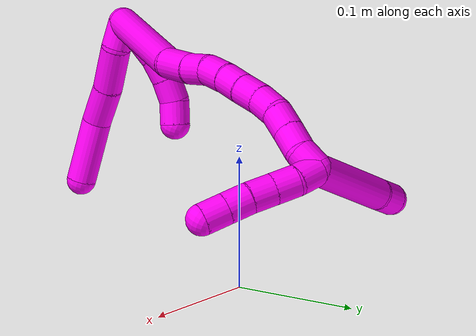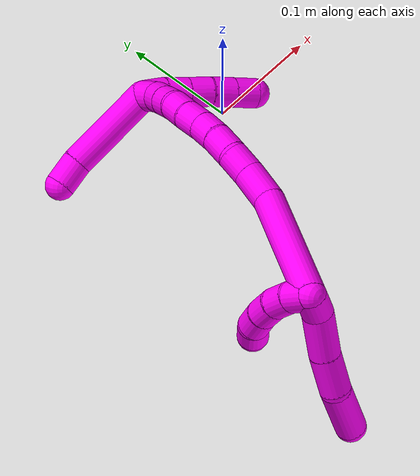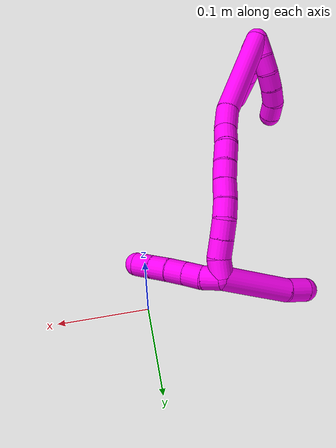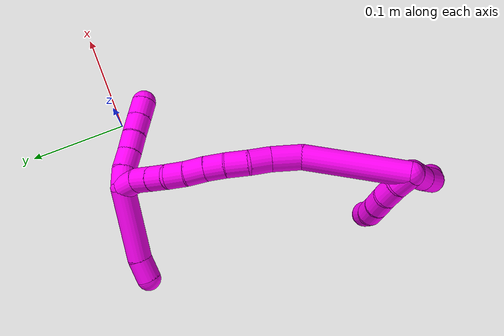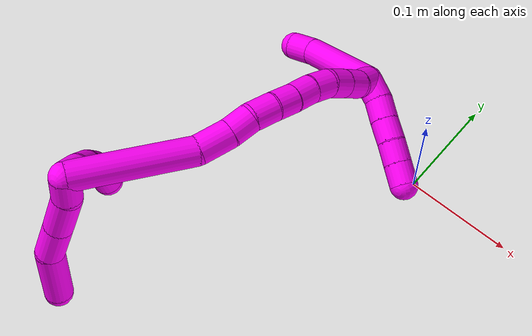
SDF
<sdf version="1.7">
 <world name="default">
  <model name="10">
   <static>0</static>
   <link name="10">
    <collision name="collision-cylinder-e_1_2_8">
     <pose>0.003644 -0.010474 -0.00176 1.73726 0.330544 0.389318</pose>
     <geometry><cylinder><radius>0.0125</radius><length>0.022456</length></cylinder></geometry>
     <surface>
      <friction><ode><mu>1.16</mu><mu2>1.16</mu2><slip1>0</slip1><slip2>0</slip2></ode></friction>
      <contact><ode><kp>1e+06</kp><kd>1</kd><max_vel>0</max_vel><min_depth>0.001</min_depth></ode></contact>
     </surface>
    </collision>
    <visual name="visual-cylinder-e_1_2_8">
     <pose>0.003644 -0.010474 -0.00176 1.73726 0.330544 0.389318</pose>
     <geometry><cylinder><radius>0.0125</radius><length>0.022456</length></cylinder></geometry>
     <material><ambient>1 0 0.964706 1</ambient></material>
    </visual>
    <collision name="collision-cylinder-e_2_8_9">
     <pose>0.008004 -0.040681 -0.004781 1.63464 0.03618 0.038567</pose>
     <geometry><cylinder><radius>0.0125</radius><length>0.039574</length></cylinder></geometry>
     <surface>
      <friction><ode><mu>1.16</mu><mu2>1.16</mu2><slip1>0</slip1><slip2>0</slip2></ode></friction>
      <contact><ode><kp>1e+06</kp><kd>1</kd><max_vel>0</max_vel><min_depth>0.001</min_depth></ode></contact>
     </surface>
    </collision>
    <visual name="visual-cylinder-e_2_8_9">
     <pose>0.008004 -0.040681 -0.004781 1.63464 0.03618 0.038567</pose>
     <geometry><cylinder><radius>0.0125</radius><length>0.039574</length></cylinder></geometry>
     <material><ambient>1 0 0.964706 1</ambient></material>
    </visual>
    <collision name="collision-cylinder-e_3_9_10">
     <pose>0.010116 -0.077618 -0.005565 1.54302 0.080924 0.078709</pose>
     <geometry><cylinder><radius>0.0125</radius><length>0.034533</length></cylinder></geometry>
     <surface>
      <friction><ode><mu>1.16</mu><mu2>1.16</mu2><slip1>0</slip1><slip2>0</slip2></ode></friction>
      <contact><ode><kp>1e+06</kp><kd>1</kd><max_vel>0</max_vel><min_depth>0.001</min_depth></ode></contact>
     </surface>
    </collision>
    <visual name="visual-cylinder-e_3_9_10">
     <pose>0.010116 -0.077618 -0.005565 1.54302 0.080924 0.078709</pose>
     <geometry><cylinder><radius>0.0125</radius><length>0.034533</length></cylinder></geometry>
     <material><ambient>1 0 0.964706 1</ambient></material>
    </visual>
    <collision name="collision-cylinder-e_4_10_6">
     <pose>0.02046 -0.119468 -0.010219 1.7761 0.341507 0.417887</pose>
     <geometry><cylinder><radius>0.0125</radius><length>0.053437</length></cylinder></geometry>
     <surface>
      <friction><ode><mu>1.16</mu><mu2>1.16</mu2><slip1>0</slip1><slip2>0</slip2></ode></friction>
      <contact><ode><kp>1e+06</kp><kd>1</kd><max_vel>0</max_vel><min_depth>0.001</min_depth></ode></contact>
     </surface>
    </collision>
    <visual name="visual-cylinder-e_4_10_6">
     <pose>0.02046 -0.119468 -0.010219 1.7761 0.341507 0.417887</pose>
     <geometry><cylinder><radius>0.0125</radius><length>0.053437</length></cylinder></geometry>
     <material><ambient>1 0 0.964706 1</ambient></material>
    </visual>
    <collision name="collision-cylinder-e_1_2_11">
     <pose>-0.001042 -0.0031 -0.00945 2.82457 -0.104396 -0.631781</pose>
     <geometry><cylinder><radius>0.0125</radius><length>0.02</length></cylinder></geometry>
     <surface>
      <friction><ode><mu>1.16</mu><mu2>1.16</mu2><slip1>0</slip1><slip2>0</slip2></ode></friction>
      <contact><ode><kp>1e+06</kp><kd>1</kd><max_vel>0</max_vel><min_depth>0.001</min_depth></ode></contact>
     </surface>
    </collision>
    <visual name="visual-cylinder-e_1_2_11">
     <pose>-0.001042 -0.0031 -0.00945 2.82457 -0.104396 -0.631781</pose>
     <geometry><cylinder><radius>0.0125</radius><length>0.02</length></cylinder></geometry>
     <material><ambient>1 0 0.964706 1</ambient></material>
    </visual>
    <collision name="collision-cylinder-e_2_11_12">
     <pose>-0.003087 -0.011202 -0.027501 2.61492 -0.100499 -0.368848</pose>
     <geometry><cylinder><radius>0.0125</radius><length>0.02</length></cylinder></geometry>
     <surface>
      <friction><ode><mu>1.16</mu><mu2>1.16</mu2><slip1>0</slip1><slip2>0</slip2></ode></friction>
      <contact><ode><kp>1e+06</kp><kd>1</kd><max_vel>0</max_vel><min_depth>0.001</min_depth></ode></contact>
     </surface>
    </collision>
    <visual name="visual-cylinder-e_2_11_12">
     <pose>-0.003087 -0.011202 -0.027501 2.61492 -0.100499 -0.368848</pose>
     <geometry><cylinder><radius>0.0125</radius><length>0.02</length></cylinder></geometry>
     <material><ambient>1 0 0.964706 1</ambient></material>
    </visual>
    <collision name="collision-cylinder-e_3_12_13">
     <pose>-0.004657 -0.022838 -0.043563 2.41478 -0.056697 -0.148851</pose>
     <geometry><cylinder><radius>0.0125</radius><length>0.02</length></cylinder></geometry>
     <surface>
      <friction><ode><mu>1.16</mu><mu2>1.16</mu2><slip1>0</slip1><slip2>0</slip2></ode></friction>
      <contact><ode><kp>1e+06</kp><kd>1</kd><max_vel>0</max_vel><min_depth>0.001</min_depth></ode></contact>
     </surface>
    </collision>
    <visual name="visual-cylinder-e_3_12_13">
     <pose>-0.004657 -0.022838 -0.043563 2.41478 -0.056697 -0.148851</pose>
     <geometry><cylinder><radius>0.0125</radius><length>0.02</length></cylinder></geometry>
     <material><ambient>1 0 0.964706 1</ambient></material>
    </visual>
    <collision name="collision-cylinder-e_4_13_14">
     <pose>-0.004981 -0.03691 -0.057704 2.3025 0.024325 0.054526</pose>
     <geometry><cylinder><radius>0.0125</radius><length>0.02</length></cylinder></geometry>
     <surface>
      <friction><ode><mu>1.16</mu><mu2>1.16</mu2><slip1>0</slip1><slip2>0</slip2></ode></friction>
      <contact><ode><kp>1e+06</kp><kd>1</kd><max_vel>0</max_vel><min_depth>0.001</min_depth></ode></contact>
     </surface>
    </collision>
    <visual name="visual-cylinder-e_4_13_14">
     <pose>-0.004981 -0.03691 -0.057704 2.3025 0.024325 0.054526</pose>
     <geometry><cylinder><radius>0.0125</radius><length>0.02</length></cylinder></geometry>
     <material><ambient>1 0 0.964706 1</ambient></material>
    </visual>
    <collision name="collision-cylinder-e_5_14_5">
     <pose>-0.001736 -0.052437 -0.069439 2.12939 0.30487 0.540784</pose>
     <geometry><cylinder><radius>0.0125</radius><length>0.02</length></cylinder></geometry>
     <surface>
      <friction><ode><mu>1.16</mu><mu2>1.16</mu2><slip1>0</slip1><slip2>0</slip2></ode></friction>
      <contact><ode><kp>1e+06</kp><kd>1</kd><max_vel>0</max_vel><min_depth>0.001</min_depth></ode></contact>
     </surface>
    </collision>
    <visual name="visual-cylinder-e_5_14_5">
     <pose>-0.001736 -0.052437 -0.069439 2.12939 0.30487 0.540784</pose>
     <geometry><cylinder><radius>0.0125</radius><length>0.02</length></cylinder></geometry>
     <material><ambient>1 0 0.964706 1</ambient></material>
    </visual>
    <collision name="collision-cylinder-e_1_2_15">
     <pose>0.027368 0.014917 -0.042318 -2.8027 0.547699 -2.0475</pose>
     <geometry><cylinder><radius>0.0125</radius><length>0.105115</length></cylinder></geometry>
     <surface>
      <friction><ode><mu>1.16</mu><mu2>1.16</mu2><slip1>0</slip1><slip2>0</slip2></ode></friction>
      <contact><ode><kp>1e+06</kp><kd>1</kd><max_vel>0</max_vel><min_depth>0.001</min_depth></ode></contact>
     </surface>
    </collision>
    <visual name="visual-cylinder-e_1_2_15">
     <pose>0.027368 0.014917 -0.042318 -2.8027 0.547699 -2.0475</pose>
     <geometry><cylinder><radius>0.0125</radius><length>0.105115</length></cylinder></geometry>
     <material><ambient>1 0 0.964706 1</ambient></material>
    </visual>
    <collision name="collision-cylinder-e_2_15_16">
     <pose>0.058813 0.036255 -0.097608 -2.68191 0.274571 -1.06676</pose>
     <geometry><cylinder><radius>0.0125</radius><length>0.030078</length></cylinder></geometry>
     <surface>
      <friction><ode><mu>1.16</mu><mu2>1.16</mu2><slip1>0</slip1><slip2>0</slip2></ode></friction>
      <contact><ode><kp>1e+06</kp><kd>1</kd><max_vel>0</max_vel><min_depth>0.001</min_depth></ode></contact>
     </surface>
    </collision>
    <visual name="visual-cylinder-e_2_15_16">
     <pose>0.058813 0.036255 -0.097608 -2.68191 0.274571 -1.06676</pose>
     <geometry><cylinder><radius>0.0125</radius><length>0.030078</length></cylinder></geometry>
     <material><ambient>1 0 0.964706 1</ambient></material>
    </visual>
    <collision name="collision-cylinder-e_3_16_17">
     <pose>0.064491 0.048097 -0.119624 -2.60173 0.150641 -0.532525</pose>
     <geometry><cylinder><radius>0.0125</radius><length>0.021326</length></cylinder></geometry>
     <surface>
      <friction><ode><mu>1.16</mu><mu2>1.16</mu2><slip1>0</slip1><slip2>0</slip2></ode></friction>
      <contact><ode><kp>1e+06</kp><kd>1</kd><max_vel>0</max_vel><min_depth>0.001</min_depth></ode></contact>
     </surface>
    </collision>
    <visual name="visual-cylinder-e_3_16_17">
     <pose>0.064491 0.048097 -0.119624 -2.60173 0.150641 -0.532525</pose>
     <geometry><cylinder><radius>0.0125</radius><length>0.021326</length></cylinder></geometry>
     <material><ambient>1 0 0.964706 1</ambient></material>
    </visual>
    <collision name="collision-cylinder-e_4_17_18">
     <pose>0.069154 0.056823 -0.139032 -2.83277 0.274428 -1.4513</pose>
     <geometry><cylinder><radius>0.0125</radius><length>0.022605</length></cylinder></geometry>
     <surface>
      <friction><ode><mu>1.16</mu><mu2>1.16</mu2><slip1>0</slip1><slip2>0</slip2></ode></friction>
      <contact><ode><kp>1e+06</kp><kd>1</kd><max_vel>0</max_vel><min_depth>0.001</min_depth></ode></contact>
     </surface>
    </collision>
    <visual name="visual-cylinder-e_4_17_18">
     <pose>0.069154 0.056823 -0.139032 -2.83277 0.274428 -1.4513</pose>
     <geometry><cylinder><radius>0.0125</radius><length>0.022605</length></cylinder></geometry>
     <material><ambient>1 0 0.964706 1</ambient></material>
    </visual>
    <collision name="collision-cylinder-e_5_18_19">
     <pose>0.074753 0.061823 -0.158945 -2.966 0.255774 -1.94104</pose>
     <geometry><cylinder><radius>0.0125</radius><length>0.020047</length></cylinder></geometry>
     <surface>
      <friction><ode><mu>1.16</mu><mu2>1.16</mu2><slip1>0</slip1><slip2>0</slip2></ode></friction>
      <contact><ode><kp>1e+06</kp><kd>1</kd><max_vel>0</max_vel><min_depth>0.001</min_depth></ode></contact>
     </surface>
    </collision>
    <visual name="visual-cylinder-e_5_18_19">
     <pose>0.074753 0.061823 -0.158945 -2.966 0.255774 -1.94104</pose>
     <geometry><cylinder><radius>0.0125</radius><length>0.020047</length></cylinder></geometry>
     <material><ambient>1 0 0.964706 1</ambient></material>
    </visual>
    <collision name="collision-cylinder-e_6_19_20">
     <pose>0.079169 0.065083 -0.178508 -2.98651 0.183333 -1.73815</pose>
     <geometry><cylinder><radius>0.0125</radius><length>0.020618</length></cylinder></geometry>
     <surface>
      <friction><ode><mu>1.16</mu><mu2>1.16</mu2><slip1>0</slip1><slip2>0</slip2></ode></friction>
      <contact><ode><kp>1e+06</kp><kd>1</kd><max_vel>0</max_vel><min_depth>0.001</min_depth></ode></contact>
     </surface>
    </collision>
    <visual name="visual-cylinder-e_6_19_20">
     <pose>0.079169 0.065083 -0.178508 -2.98651 0.183333 -1.73815</pose>
     <geometry><cylinder><radius>0.0125</radius><length>0.020618</length></cylinder></geometry>
     <material><ambient>1 0 0.964706 1</ambient></material>
    </visual>
    <collision name="collision-cylinder-e_7_20_21">
     <pose>0.083926 0.06743 -0.198126 -3.06047 0.29025 -2.59991</pose>
     <geometry><cylinder><radius>0.0125</radius><length>0.02011</length></cylinder></geometry>
     <surface>
      <friction><ode><mu>1.16</mu><mu2>1.16</mu2><slip1>0</slip1><slip2>0</slip2></ode></friction>
      <contact><ode><kp>1e+06</kp><kd>1</kd><max_vel>0</max_vel><min_depth>0.001</min_depth></ode></contact>
     </surface>
    </collision>
    <visual name="visual-cylinder-e_7_20_21">
     <pose>0.083926 0.06743 -0.198126 -3.06047 0.29025 -2.59991</pose>
     <geometry><cylinder><radius>0.0125</radius><length>0.02011</length></cylinder></geometry>
     <material><ambient>1 0 0.964706 1</ambient></material>
    </visual>
    <collision name="collision-cylinder-e_8_21_22">
     <pose>0.090437 0.066191 -0.216848 2.92368 0.371007 2.08607</pose>
     <geometry><cylinder><radius>0.0125</radius><length>0.020045</length></cylinder></geometry>
     <surface>
      <friction><ode><mu>1.16</mu><mu2>1.16</mu2><slip1>0</slip1><slip2>0</slip2></ode></friction>
      <contact><ode><kp>1e+06</kp><kd>1</kd><max_vel>0</max_vel><min_depth>0.001</min_depth></ode></contact>
     </surface>
    </collision>
    <visual name="visual-cylinder-e_8_21_22">
     <pose>0.090437 0.066191 -0.216848 2.92368 0.371007 2.08607</pose>
     <geometry><cylinder><radius>0.0125</radius><length>0.020045</length></cylinder></geometry>
     <material><ambient>1 0 0.964706 1</ambient></material>
    </visual>
    <collision name="collision-cylinder-e_9_22_23">
     <pose>0.097855 0.061999 -0.234995 2.90541 0.38702 2.05276</pose>
     <geometry><cylinder><radius>0.0125</radius><length>0.020052</length></cylinder></geometry>
     <surface>
      <friction><ode><mu>1.16</mu><mu2>1.16</mu2><slip1>0</slip1><slip2>0</slip2></ode></friction>
      <contact><ode><kp>1e+06</kp><kd>1</kd><max_vel>0</max_vel><min_depth>0.001</min_depth></ode></contact>
     </surface>
    </collision>
    <visual name="visual-cylinder-e_9_22_23">
     <pose>0.097855 0.061999 -0.234995 2.90541 0.38702 2.05276</pose>
     <geometry><cylinder><radius>0.0125</radius><length>0.020052</length></cylinder></geometry>
     <material><ambient>1 0 0.964706 1</ambient></material>
    </visual>
    <collision name="collision-cylinder-e_10_23_1">
     <pose>0.102548 0.05771 -0.253754 2.92752 0.090997 0.801617</pose>
     <geometry><cylinder><radius>0.0125</radius><length>0.020003</length></cylinder></geometry>
     <surface>
      <friction><ode><mu>1.16</mu><mu2>1.16</mu2><slip1>0</slip1><slip2>0</slip2></ode></friction>
      <contact><ode><kp>1e+06</kp><kd>1</kd><max_vel>0</max_vel><min_depth>0.001</min_depth></ode></contact>
     </surface>
    </collision>
    <visual name="visual-cylinder-e_10_23_1">
     <pose>0.102548 0.05771 -0.253754 2.92752 0.090997 0.801617</pose>
     <geometry><cylinder><radius>0.0125</radius><length>0.020003</length></cylinder></geometry>
     <material><ambient>1 0 0.964706 1</ambient></material>
    </visual>
    <collision name="collision-cylinder-e_1_1_24">
     <pose>0.072071 0.03772 -0.276139 2.18674 -0.961594 -1.57904</pose>
     <geometry><cylinder><radius>0.0125</radius><length>0.076541</length></cylinder></geometry>
     <surface>
      <friction><ode><mu>1.16</mu><mu2>1.16</mu2><slip1>0</slip1><slip2>0</slip2></ode></friction>
      <contact><ode><kp>1e+06</kp><kd>1</kd><max_vel>0</max_vel><min_depth>0.001</min_depth></ode></contact>
     </surface>
    </collision>
    <visual name="visual-cylinder-e_1_1_24">
     <pose>0.072071 0.03772 -0.276139 2.18674 -0.961594 -1.57904</pose>
     <geometry><cylinder><radius>0.0125</radius><length>0.076541</length></cylinder></geometry>
     <material><ambient>1 0 0.964706 1</ambient></material>
    </visual>
    <collision name="collision-cylinder-e_2_24_4">
     <pose>0.030752 0.013837 -0.290468 1.84299 -1.00999 -1.25885</pose>
     <geometry><cylinder><radius>0.0125</radius><length>0.023459</length></cylinder></geometry>
     <surface>
      <friction><ode><mu>1.16</mu><mu2>1.16</mu2><slip1>0</slip1><slip2>0</slip2></ode></friction>
      <contact><ode><kp>1e+06</kp><kd>1</kd><max_vel>0</max_vel><min_depth>0.001</min_depth></ode></contact>
     </surface>
    </collision>
    <visual name="visual-cylinder-e_2_24_4">
     <pose>0.030752 0.013837 -0.290468 1.84299 -1.00999 -1.25885</pose>
     <geometry><cylinder><radius>0.0125</radius><length>0.023459</length></cylinder></geometry>
     <material><ambient>1 0 0.964706 1</ambient></material>
    </visual>
    <collision name="collision-cylinder-e_1_1_25">
     <pose>0.112749 0.052938 -0.260918 0.801955 1.1923 0.560169</pose>
     <geometry><cylinder><radius>0.0125</radius><length>0.02</length></cylinder></geometry>
     <surface>
      <friction><ode><mu>1.16</mu><mu2>1.16</mu2><slip1>0</slip1><slip2>0</slip2></ode></friction>
      <contact><ode><kp>1e+06</kp><kd>1</kd><max_vel>0</max_vel><min_depth>0.001</min_depth></ode></contact>
     </surface>
    </collision>
    <visual name="visual-cylinder-e_1_1_25">
     <pose>0.112749 0.052938 -0.260918 0.801955 1.1923 0.560169</pose>
     <geometry><cylinder><radius>0.0125</radius><length>0.02</length></cylinder></geometry>
     <material><ambient>1 0 0.964706 1</ambient></material>
    </visual>
    <collision name="collision-cylinder-e_2_25_26">
     <pose>0.130372 0.046942 -0.253939 0.648265 0.984601 0.356579</pose>
     <geometry><cylinder><radius>0.0125</radius><length>0.02</length></cylinder></geometry>
     <surface>
      <friction><ode><mu>1.16</mu><mu2>1.16</mu2><slip1>0</slip1><slip2>0</slip2></ode></friction>
      <contact><ode><kp>1e+06</kp><kd>1</kd><max_vel>0</max_vel><min_depth>0.001</min_depth></ode></contact>
     </surface>
    </collision>
    <visual name="visual-cylinder-e_2_25_26">
     <pose>0.130372 0.046942 -0.253939 0.648265 0.984601 0.356579</pose>
     <geometry><cylinder><radius>0.0125</radius><length>0.02</length></cylinder></geometry>
     <material><ambient>1 0 0.964706 1</ambient></material>
    </visual>
    <collision name="collision-cylinder-e_3_26_27">
     <pose>0.147232 0.04055 -0.245295 0.624562 1.02168 0.358009</pose>
     <geometry><cylinder><radius>0.0125</radius><length>0.02</length></cylinder></geometry>
     <surface>
      <friction><ode><mu>1.16</mu><mu2>1.16</mu2><slip1>0</slip1><slip2>0</slip2></ode></friction>
      <contact><ode><kp>1e+06</kp><kd>1</kd><max_vel>0</max_vel><min_depth>0.001</min_depth></ode></contact>
     </surface>
    </collision>
    <visual name="visual-cylinder-e_3_26_27">
     <pose>0.147232 0.04055 -0.245295 0.624562 1.02168 0.358009</pose>
     <geometry><cylinder><radius>0.0125</radius><length>0.02</length></cylinder></geometry>
     <material><ambient>1 0 0.964706 1</ambient></material>
    </visual>
    <collision name="collision-cylinder-e_4_27_28">
     <pose>0.16414 0.033696 -0.237143 0.770332 0.993245 0.432537</pose>
     <geometry><cylinder><radius>0.0125</radius><length>0.02</length></cylinder></geometry>
     <surface>
      <friction><ode><mu>1.16</mu><mu2>1.16</mu2><slip1>0</slip1><slip2>0</slip2></ode></friction>
      <contact><ode><kp>1e+06</kp><kd>1</kd><max_vel>0</max_vel><min_depth>0.001</min_depth></ode></contact>
     </surface>
    </collision>
    <visual name="visual-cylinder-e_4_27_28">
     <pose>0.16414 0.033696 -0.237143 0.770332 0.993245 0.432537</pose>
     <geometry><cylinder><radius>0.0125</radius><length>0.02</length></cylinder></geometry>
     <material><ambient>1 0 0.964706 1</ambient></material>
    </visual>
    <collision name="collision-cylinder-e_5_28_3">
     <pose>0.180897 0.026101 -0.2293 0.768373 0.993453 0.431462</pose>
     <geometry><cylinder><radius>0.0125</radius><length>0.02</length></cylinder></geometry>
     <surface>
      <friction><ode><mu>1.16</mu><mu2>1.16</mu2><slip1>0</slip1><slip2>0</slip2></ode></friction>
      <contact><ode><kp>1e+06</kp><kd>1</kd><max_vel>0</max_vel><min_depth>0.001</min_depth></ode></contact>
     </surface>
    </collision>
    <visual name="visual-cylinder-e_5_28_3">
     <pose>0.180897 0.026101 -0.2293 0.768373 0.993453 0.431462</pose>
     <geometry><cylinder><radius>0.0125</radius><length>0.02</length></cylinder></geometry>
     <material><ambient>1 0 0.964706 1</ambient></material>
    </visual>
    <collision name="collision-sphere-3">
     <pose>0.189276 0.022308 -0.225375 0 -0 0</pose>
     <geometry><sphere><radius>0.0125</radius></sphere></geometry>
     <surface>
      <friction><ode><mu>1.16</mu><mu2>1.16</mu2><slip1>0</slip1><slip2>0</slip2></ode></friction>
      <contact><ode><kp>1e+06</kp><kd>1</kd><max_vel>0</max_vel><min_depth>0.001</min_depth></ode></contact>
     </surface>
    </collision>
    <visual name="visual-sphere-3">
     <pose>0.189276 0.022308 -0.225375 0 -0 0</pose>
     <geometry><sphere><radius>0.0125</radius></sphere></geometry>
     <material><ambient>1 0 0.964706 1</ambient></material>
    </visual>
    <collision name="collision-sphere-28">
     <pose>0.172518 0.029894 -0.233224 0 -0 0</pose>
     <geometry><sphere><radius>0.0125</radius></sphere></geometry>
     <surface>
      <friction><ode><mu>1.16</mu><mu2>1.16</mu2><slip1>0</slip1><slip2>0</slip2></ode></friction>
      <contact><ode><kp>1e+06</kp><kd>1</kd><max_vel>0</max_vel><min_depth>0.001</min_depth></ode></contact>
     </surface>
    </collision>
    <visual name="visual-sphere-28">
     <pose>0.172518 0.029894 -0.233224 0 -0 0</pose>
     <geometry><sphere><radius>0.0125</radius></sphere></geometry>
     <material><ambient>1 0 0.964706 1</ambient></material>
    </visual>
    <collision name="collision-sphere-27">
     <pose>0.155762 0.037498 -0.241061 0 -0 0</pose>
     <geometry><sphere><radius>0.0125</radius></sphere></geometry>
     <surface>
      <friction><ode><mu>1.16</mu><mu2>1.16</mu2><slip1>0</slip1><slip2>0</slip2></ode></friction>
      <contact><ode><kp>1e+06</kp><kd>1</kd><max_vel>0</max_vel><min_depth>0.001</min_depth></ode></contact>
     </surface>
    </collision>
    <visual name="visual-sphere-27">
     <pose>0.155762 0.037498 -0.241061 0 -0 0</pose>
     <geometry><sphere><radius>0.0125</radius></sphere></geometry>
     <material><ambient>1 0 0.964706 1</ambient></material>
    </visual>
    <collision name="collision-sphere-26">
     <pose>0.138702 0.043602 -0.249529 0 -0 0</pose>
     <geometry><sphere><radius>0.0125</radius></sphere></geometry>
     <surface>
      <friction><ode><mu>1.16</mu><mu2>1.16</mu2><slip1>0</slip1><slip2>0</slip2></ode></friction>
      <contact><ode><kp>1e+06</kp><kd>1</kd><max_vel>0</max_vel><min_depth>0.001</min_depth></ode></contact>
     </surface>
    </collision>
    <visual name="visual-sphere-26">
     <pose>0.138702 0.043602 -0.249529 0 -0 0</pose>
     <geometry><sphere><radius>0.0125</radius></sphere></geometry>
     <material><ambient>1 0 0.964706 1</ambient></material>
    </visual>
    <collision name="collision-sphere-25">
     <pose>0.122041 0.050283 -0.258349 0 -0 0</pose>
     <geometry><sphere><radius>0.0125</radius></sphere></geometry>
     <surface>
      <friction><ode><mu>1.16</mu><mu2>1.16</mu2><slip1>0</slip1><slip2>0</slip2></ode></friction>
      <contact><ode><kp>1e+06</kp><kd>1</kd><max_vel>0</max_vel><min_depth>0.001</min_depth></ode></contact>
     </surface>
    </collision>
    <visual name="visual-sphere-25">
     <pose>0.122041 0.050283 -0.258349 0 -0 0</pose>
     <geometry><sphere><radius>0.0125</radius></sphere></geometry>
     <material><ambient>1 0 0.964706 1</ambient></material>
    </visual>
    <collision name="collision-sphere-4">
     <pose>0.020819 0.007828 -0.292145 0 -0 0</pose>
     <geometry><sphere><radius>0.0125</radius></sphere></geometry>
     <surface>
      <friction><ode><mu>1.16</mu><mu2>1.16</mu2><slip1>0</slip1><slip2>0</slip2></ode></friction>
      <contact><ode><kp>1e+06</kp><kd>1</kd><max_vel>0</max_vel><min_depth>0.001</min_depth></ode></contact>
     </surface>
    </collision>
    <visual name="visual-sphere-4">
     <pose>0.020819 0.007828 -0.292145 0 -0 0</pose>
     <geometry><sphere><radius>0.0125</radius></sphere></geometry>
     <material><ambient>1 0 0.964706 1</ambient></material>
    </visual>
    <collision name="collision-sphere-24">
     <pose>0.040685 0.019845 -0.28879 0 -0 0</pose>
     <geometry><sphere><radius>0.0125</radius></sphere></geometry>
     <surface>
      <friction><ode><mu>1.16</mu><mu2>1.16</mu2><slip1>0</slip1><slip2>0</slip2></ode></friction>
      <contact><ode><kp>1e+06</kp><kd>1</kd><max_vel>0</max_vel><min_depth>0.001</min_depth></ode></contact>
     </surface>
    </collision>
    <visual name="visual-sphere-24">
     <pose>0.040685 0.019845 -0.28879 0 -0 0</pose>
     <geometry><sphere><radius>0.0125</radius></sphere></geometry>
     <material><ambient>1 0 0.964706 1</ambient></material>
    </visual>
    <collision name="collision-sphere-1">
     <pose>0.103457 0.055594 -0.263487 0 -0 0</pose>
     <geometry><sphere><radius>0.0125</radius></sphere></geometry>
     <surface>
      <friction><ode><mu>1.16</mu><mu2>1.16</mu2><slip1>0</slip1><slip2>0</slip2></ode></friction>
      <contact><ode><kp>1e+06</kp><kd>1</kd><max_vel>0</max_vel><min_depth>0.001</min_depth></ode></contact>
     </surface>
    </collision>
    <visual name="visual-sphere-1">
     <pose>0.103457 0.055594 -0.263487 0 -0 0</pose>
     <geometry><sphere><radius>0.0125</radius></sphere></geometry>
     <material><ambient>1 0 0.964706 1</ambient></material>
    </visual>
    <collision name="collision-sphere-23">
     <pose>0.101639 0.059826 -0.244022 0 -0 0</pose>
     <geometry><sphere><radius>0.0125</radius></sphere></geometry>
     <surface>
      <friction><ode><mu>1.16</mu><mu2>1.16</mu2><slip1>0</slip1><slip2>0</slip2></ode></friction>
      <contact><ode><kp>1e+06</kp><kd>1</kd><max_vel>0</max_vel><min_depth>0.001</min_depth></ode></contact>
     </surface>
    </collision>
    <visual name="visual-sphere-23">
     <pose>0.101639 0.059826 -0.244022 0 -0 0</pose>
     <geometry><sphere><radius>0.0125</radius></sphere></geometry>
     <material><ambient>1 0 0.964706 1</ambient></material>
    </visual>
    <collision name="collision-sphere-22">
     <pose>0.094071 0.064171 -0.225968 0 -0 0</pose>
     <geometry><sphere><radius>0.0125</radius></sphere></geometry>
     <surface>
      <friction><ode><mu>1.16</mu><mu2>1.16</mu2><slip1>0</slip1><slip2>0</slip2></ode></friction>
      <contact><ode><kp>1e+06</kp><kd>1</kd><max_vel>0</max_vel><min_depth>0.001</min_depth></ode></contact>
     </surface>
    </collision>
    <visual name="visual-sphere-22">
     <pose>0.094071 0.064171 -0.225968 0 -0 0</pose>
     <geometry><sphere><radius>0.0125</radius></sphere></geometry>
     <material><ambient>1 0 0.964706 1</ambient></material>
    </visual>
    <collision name="collision-sphere-21">
     <pose>0.086803 0.06821 -0.207728 0 -0 0</pose>
     <geometry><sphere><radius>0.0125</radius></sphere></geometry>
     <surface>
      <friction><ode><mu>1.16</mu><mu2>1.16</mu2><slip1>0</slip1><slip2>0</slip2></ode></friction>
      <contact><ode><kp>1e+06</kp><kd>1</kd><max_vel>0</max_vel><min_depth>0.001</min_depth></ode></contact>
     </surface>
    </collision>
    <visual name="visual-sphere-21">
     <pose>0.086803 0.06821 -0.207728 0 -0 0</pose>
     <geometry><sphere><radius>0.0125</radius></sphere></geometry>
     <material><ambient>1 0 0.964706 1</ambient></material>
    </visual>
    <collision name="collision-sphere-11">
     <pose>-0.002084 -0.006201 -0.0189 0 -0 0</pose>
     <geometry><sphere><radius>0.0125</radius></sphere></geometry>
     <surface>
      <friction><ode><mu>1.16</mu><mu2>1.16</mu2><slip1>0</slip1><slip2>0</slip2></ode></friction>
      <contact><ode><kp>1e+06</kp><kd>1</kd><max_vel>0</max_vel><min_depth>0.001</min_depth></ode></contact>
     </surface>
    </collision>
    <visual name="visual-sphere-11">
     <pose>-0.002084 -0.006201 -0.0189 0 -0 0</pose>
     <geometry><sphere><radius>0.0125</radius></sphere></geometry>
     <material><ambient>1 0 0.964706 1</ambient></material>
    </visual>
    <collision name="collision-sphere-6">
     <pose>0.029408 -0.144115 -0.015351 0 -0 0</pose>
     <geometry><sphere><radius>0.0125</radius></sphere></geometry>
     <surface>
      <friction><ode><mu>1.16</mu><mu2>1.16</mu2><slip1>0</slip1><slip2>0</slip2></ode></friction>
      <contact><ode><kp>1e+06</kp><kd>1</kd><max_vel>0</max_vel><min_depth>0.001</min_depth></ode></contact>
     </surface>
    </collision>
    <visual name="visual-sphere-6">
     <pose>0.029408 -0.144115 -0.015351 0 -0 0</pose>
     <geometry><sphere><radius>0.0125</radius></sphere></geometry>
     <material><ambient>1 0 0.964706 1</ambient></material>
    </visual>
    <collision name="collision-sphere-10">
     <pose>0.011511 -0.094821 -0.005087 0 -0 0</pose>
     <geometry><sphere><radius>0.0125</radius></sphere></geometry>
     <surface>
      <friction><ode><mu>1.16</mu><mu2>1.16</mu2><slip1>0</slip1><slip2>0</slip2></ode></friction>
      <contact><ode><kp>1e+06</kp><kd>1</kd><max_vel>0</max_vel><min_depth>0.001</min_depth></ode></contact>
     </surface>
    </collision>
    <visual name="visual-sphere-10">
     <pose>0.011511 -0.094821 -0.005087 0 -0 0</pose>
     <geometry><sphere><radius>0.0125</radius></sphere></geometry>
     <material><ambient>1 0 0.964706 1</ambient></material>
    </visual>
    <collision name="collision-sphere-9">
     <pose>0.00872 -0.060414 -0.006043 0 -0 0</pose>
     <geometry><sphere><radius>0.0125</radius></sphere></geometry>
     <surface>
      <friction><ode><mu>1.16</mu><mu2>1.16</mu2><slip1>0</slip1><slip2>0</slip2></ode></friction>
      <contact><ode><kp>1e+06</kp><kd>1</kd><max_vel>0</max_vel><min_depth>0.001</min_depth></ode></contact>
     </surface>
    </collision>
    <visual name="visual-sphere-9">
     <pose>0.00872 -0.060414 -0.006043 0 -0 0</pose>
     <geometry><sphere><radius>0.0125</radius></sphere></geometry>
     <material><ambient>1 0 0.964706 1</ambient></material>
    </visual>
    <collision name="collision-sphere-2">
     <geometry><sphere><radius>0.0125</radius></sphere></geometry>
     <surface>
      <friction><ode><mu>1.16</mu><mu2>1.16</mu2><slip1>0</slip1><slip2>0</slip2></ode></friction>
      <contact><ode><kp>1e+06</kp><kd>1</kd><max_vel>0</max_vel><min_depth>0.001</min_depth></ode></contact>
     </surface>
    </collision>
    <visual name="visual-sphere-2">
     <geometry><sphere><radius>0.0125</radius></sphere></geometry>
     <material><ambient>1 0 0.964706 1</ambient></material>
    </visual>
    <collision name="collision-sphere-19">
     <pose>0.077289 0.063518 -0.168494 0 -0 0</pose>
     <geometry><sphere><radius>0.0125</radius></sphere></geometry>
     <surface>
      <friction><ode><mu>1.16</mu><mu2>1.16</mu2><slip1>0</slip1><slip2>0</slip2></ode></friction>
      <contact><ode><kp>1e+06</kp><kd>1</kd><max_vel>0</max_vel><min_depth>0.001</min_depth></ode></contact>
     </surface>
    </collision>
    <visual name="visual-sphere-19">
     <pose>0.077289 0.063518 -0.168494 0 -0 0</pose>
     <geometry><sphere><radius>0.0125</radius></sphere></geometry>
     <material><ambient>1 0 0.964706 1</ambient></material>
    </visual>
    <collision name="collision-sphere-8">
     <pose>0.007288 -0.020947 -0.003519 0 -0 0</pose>
     <geometry><sphere><radius>0.0125</radius></sphere></geometry>
     <surface>
      <friction><ode><mu>1.16</mu><mu2>1.16</mu2><slip1>0</slip1><slip2>0</slip2></ode></friction>
      <contact><ode><kp>1e+06</kp><kd>1</kd><max_vel>0</max_vel><min_depth>0.001</min_depth></ode></contact>
     </surface>
    </collision>
    <visual name="visual-sphere-8">
     <pose>0.007288 -0.020947 -0.003519 0 -0 0</pose>
     <geometry><sphere><radius>0.0125</radius></sphere></geometry>
     <material><ambient>1 0 0.964706 1</ambient></material>
    </visual>
    <collision name="collision-sphere-12">
     <pose>-0.004091 -0.016203 -0.036102 0 -0 0</pose>
     <geometry><sphere><radius>0.0125</radius></sphere></geometry>
     <surface>
      <friction><ode><mu>1.16</mu><mu2>1.16</mu2><slip1>0</slip1><slip2>0</slip2></ode></friction>
      <contact><ode><kp>1e+06</kp><kd>1</kd><max_vel>0</max_vel><min_depth>0.001</min_depth></ode></contact>
     </surface>
    </collision>
    <visual name="visual-sphere-12">
     <pose>-0.004091 -0.016203 -0.036102 0 -0 0</pose>
     <geometry><sphere><radius>0.0125</radius></sphere></geometry>
     <material><ambient>1 0 0.964706 1</ambient></material>
    </visual>
    <collision name="collision-sphere-13">
     <pose>-0.005224 -0.029472 -0.051024 0 -0 0</pose>
     <geometry><sphere><radius>0.0125</radius></sphere></geometry>
     <surface>
      <friction><ode><mu>1.16</mu><mu2>1.16</mu2><slip1>0</slip1><slip2>0</slip2></ode></friction>
      <contact><ode><kp>1e+06</kp><kd>1</kd><max_vel>0</max_vel><min_depth>0.001</min_depth></ode></contact>
     </surface>
    </collision>
    <visual name="visual-sphere-13">
     <pose>-0.005224 -0.029472 -0.051024 0 -0 0</pose>
     <geometry><sphere><radius>0.0125</radius></sphere></geometry>
     <material><ambient>1 0 0.964706 1</ambient></material>
    </visual>
    <collision name="collision-sphere-14">
     <pose>-0.004738 -0.044348 -0.064383 0 -0 0</pose>
     <geometry><sphere><radius>0.0125</radius></sphere></geometry>
     <surface>
      <friction><ode><mu>1.16</mu><mu2>1.16</mu2><slip1>0</slip1><slip2>0</slip2></ode></friction>
      <contact><ode><kp>1e+06</kp><kd>1</kd><max_vel>0</max_vel><min_depth>0.001</min_depth></ode></contact>
     </surface>
    </collision>
    <visual name="visual-sphere-14">
     <pose>-0.004738 -0.044348 -0.064383 0 -0 0</pose>
     <geometry><sphere><radius>0.0125</radius></sphere></geometry>
     <material><ambient>1 0 0.964706 1</ambient></material>
    </visual>
    <collision name="collision-sphere-5">
     <pose>0.001266 -0.060526 -0.074494 0 -0 0</pose>
     <geometry><sphere><radius>0.0125</radius></sphere></geometry>
     <surface>
      <friction><ode><mu>1.16</mu><mu2>1.16</mu2><slip1>0</slip1><slip2>0</slip2></ode></friction>
      <contact><ode><kp>1e+06</kp><kd>1</kd><max_vel>0</max_vel><min_depth>0.001</min_depth></ode></contact>
     </surface>
    </collision>
    <visual name="visual-sphere-5">
     <pose>0.001266 -0.060526 -0.074494 0 -0 0</pose>
     <geometry><sphere><radius>0.0125</radius></sphere></geometry>
     <material><ambient>1 0 0.964706 1</ambient></material>
    </visual>
    <collision name="collision-sphere-15">
     <pose>0.054736 0.029833 -0.084635 0 -0 0</pose>
     <geometry><sphere><radius>0.0125</radius></sphere></geometry>
     <surface>
      <friction><ode><mu>1.16</mu><mu2>1.16</mu2><slip1>0</slip1><slip2>0</slip2></ode></friction>
      <contact><ode><kp>1e+06</kp><kd>1</kd><max_vel>0</max_vel><min_depth>0.001</min_depth></ode></contact>
     </surface>
    </collision>
    <visual name="visual-sphere-15">
     <pose>0.054736 0.029833 -0.084635 0 -0 0</pose>
     <geometry><sphere><radius>0.0125</radius></sphere></geometry>
     <material><ambient>1 0 0.964706 1</ambient></material>
    </visual>
    <collision name="collision-sphere-16">
     <pose>0.062891 0.042678 -0.110581 0 -0 0</pose>
     <geometry><sphere><radius>0.0125</radius></sphere></geometry>
     <surface>
      <friction><ode><mu>1.16</mu><mu2>1.16</mu2><slip1>0</slip1><slip2>0</slip2></ode></friction>
      <contact><ode><kp>1e+06</kp><kd>1</kd><max_vel>0</max_vel><min_depth>0.001</min_depth></ode></contact>
     </surface>
    </collision>
    <visual name="visual-sphere-16">
     <pose>0.062891 0.042678 -0.110581 0 -0 0</pose>
     <geometry><sphere><radius>0.0125</radius></sphere></geometry>
     <material><ambient>1 0 0.964706 1</ambient></material>
    </visual>
    <collision name="collision-sphere-17">
     <pose>0.066092 0.053516 -0.128667 0 -0 0</pose>
     <geometry><sphere><radius>0.0125</radius></sphere></geometry>
     <surface>
      <friction><ode><mu>1.16</mu><mu2>1.16</mu2><slip1>0</slip1><slip2>0</slip2></ode></friction>
      <contact><ode><kp>1e+06</kp><kd>1</kd><max_vel>0</max_vel><min_depth>0.001</min_depth></ode></contact>
     </surface>
    </collision>
    <visual name="visual-sphere-17">
     <pose>0.066092 0.053516 -0.128667 0 -0 0</pose>
     <geometry><sphere><radius>0.0125</radius></sphere></geometry>
     <material><ambient>1 0 0.964706 1</ambient></material>
    </visual>
    <collision name="collision-sphere-18">
     <pose>0.072217 0.060129 -0.149397 0 -0 0</pose>
     <geometry><sphere><radius>0.0125</radius></sphere></geometry>
     <surface>
      <friction><ode><mu>1.16</mu><mu2>1.16</mu2><slip1>0</slip1><slip2>0</slip2></ode></friction>
      <contact><ode><kp>1e+06</kp><kd>1</kd><max_vel>0</max_vel><min_depth>0.001</min_depth></ode></contact>
     </surface>
    </collision>
    <visual name="visual-sphere-18">
     <pose>0.072217 0.060129 -0.149397 0 -0 0</pose>
     <geometry><sphere><radius>0.0125</radius></sphere></geometry>
     <material><ambient>1 0 0.964706 1</ambient></material>
    </visual>
    <collision name="collision-sphere-20">
     <pose>0.081048 0.066649 -0.188523 0 -0 0</pose>
     <geometry><sphere><radius>0.0125</radius></sphere></geometry>
     <surface>
      <friction><ode><mu>1.16</mu><mu2>1.16</mu2><slip1>0</slip1><slip2>0</slip2></ode></friction>
      <contact><ode><kp>1e+06</kp><kd>1</kd><max_vel>0</max_vel><min_depth>0.001</min_depth></ode></contact>
     </surface>
    </collision>
    <visual name="visual-sphere-20">
     <pose>0.081048 0.066649 -0.188523 0 -0 0</pose>
     <geometry><sphere><radius>0.0125</radius></sphere></geometry>
     <material><ambient>1 0 0.964706 1</ambient></material>
    </visual>
    <inertial>
     <pose>0.054275 0.008543 -0.127555 0 -0 0</pose>
     <mass>0.75</mass>
     <inertia>
      <ixx>-9.1e-05</ixx>
      <ixy>0</ixy>
      <ixz>0</ixz>
      <iyy>-2.8e-05</iyy>
      <iyz>0</iyz>
      <izz>-3.9e-05</izz>
     </inertia>
    </inertial>
   </link>
   <pose>-0.17143 -0.242061 0.153705 1.15067 0.182844 -0.018766</pose>
  </model>
 </world>
</sdf>
